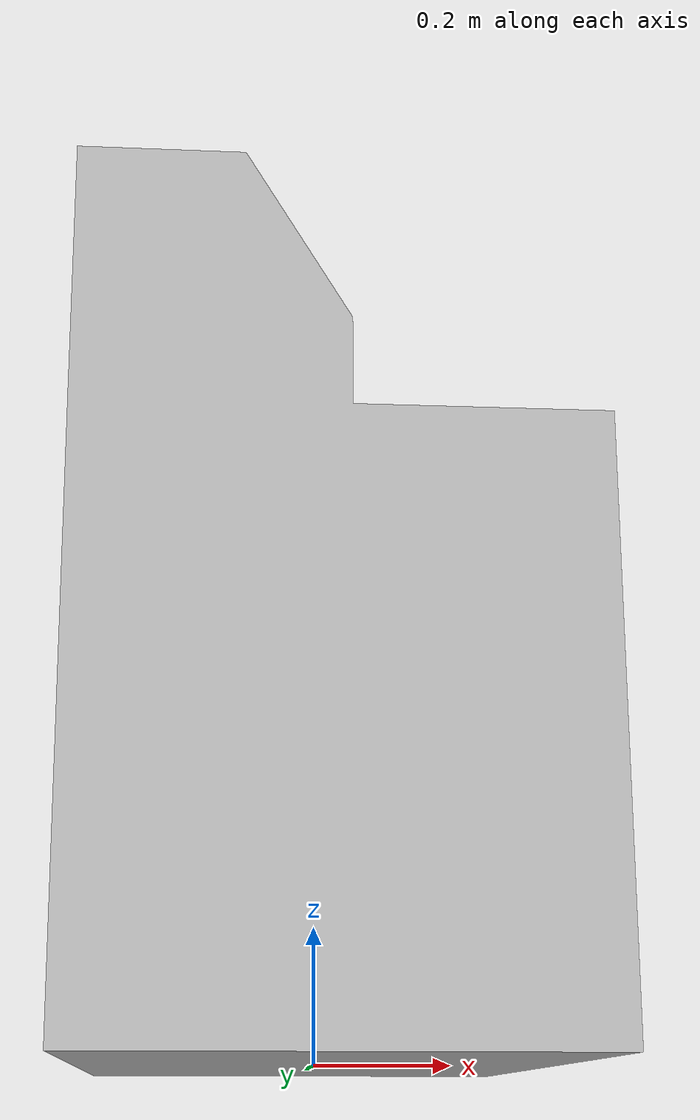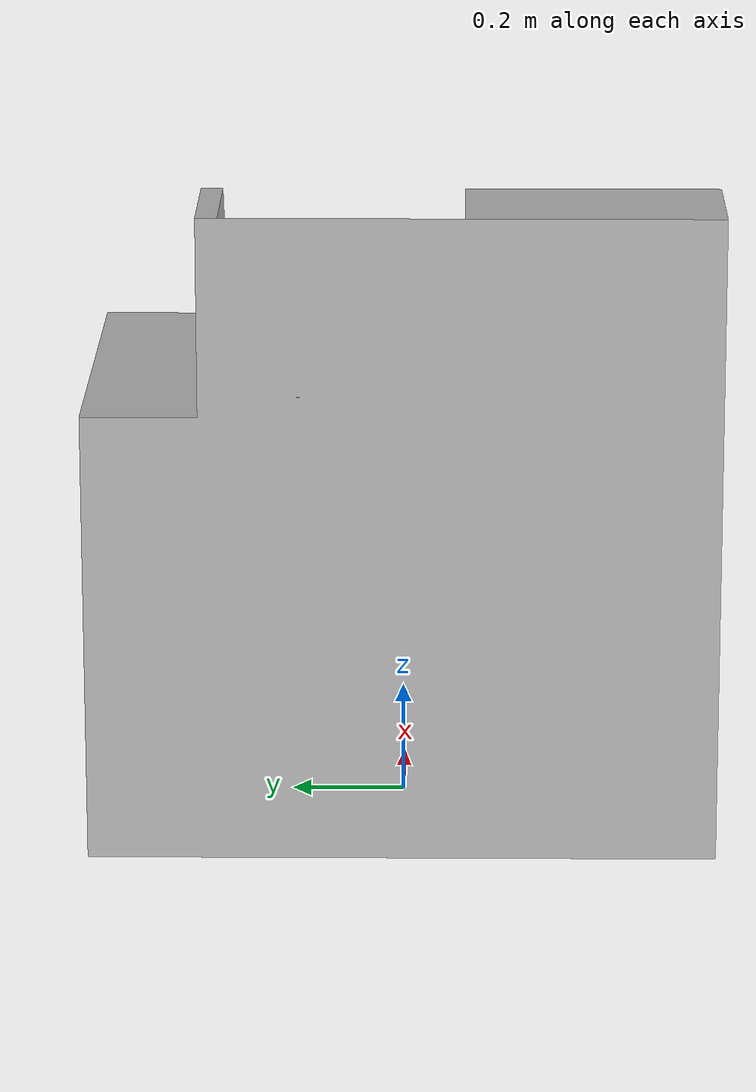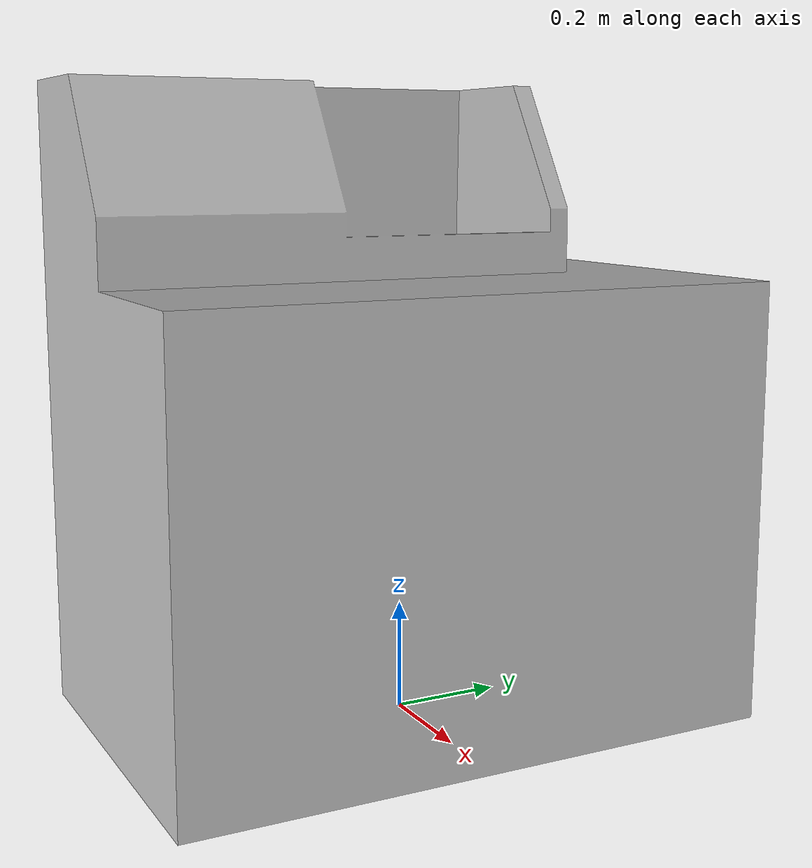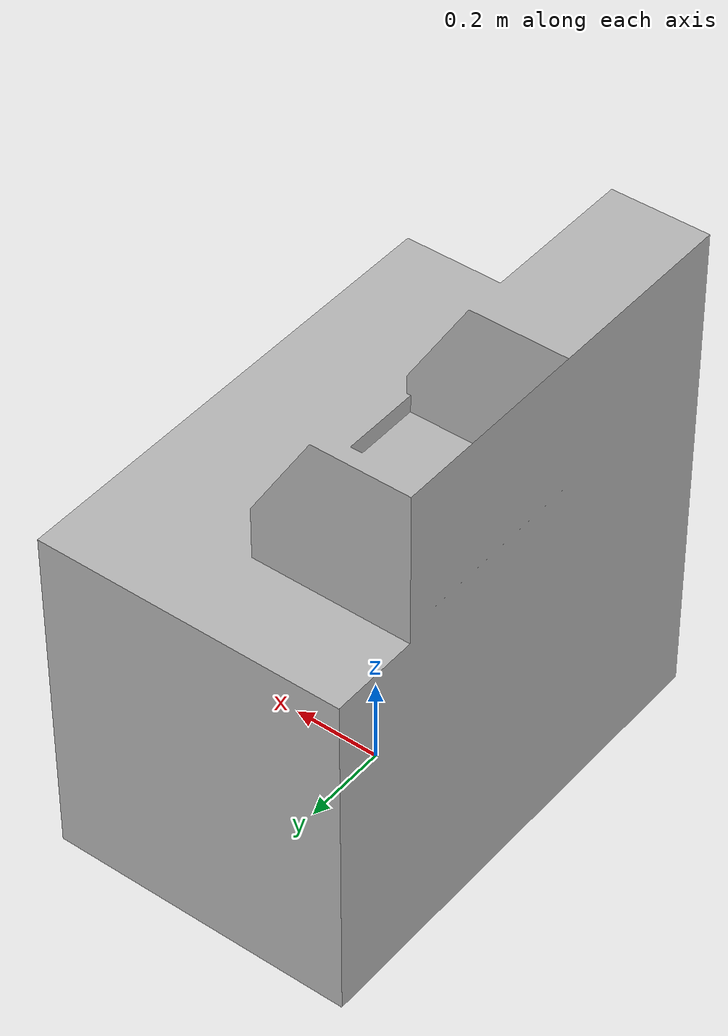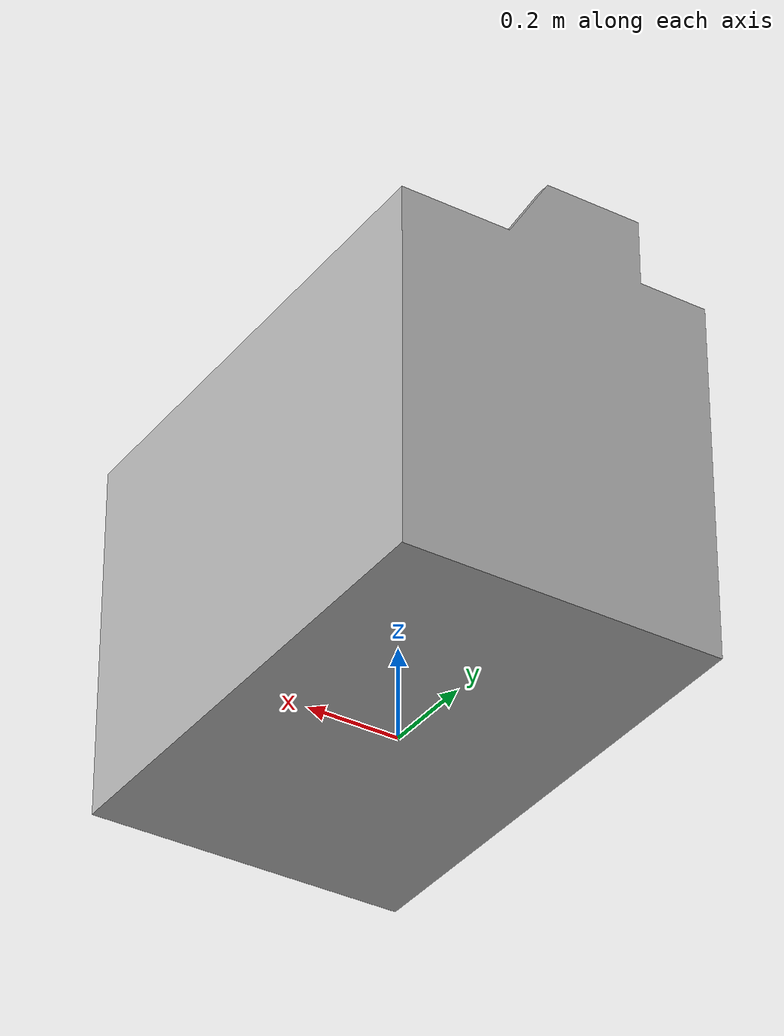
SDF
<?xml version="1.0" ?>
<sdf version='1.4'>
  <model name="shunk_machine">
      <static>1</static>
      <link name='link'>
        <inertial>
          <mass>0.0676998</mass>
          <inertia>
            <ixx>6.36046210549e-06</ixx>
            <ixy>0.000000</ixy>
            <ixz>0.000000</ixz>
            <iyy>7.70974202419e-05</iyy>
            <iyz>0.000000</iyz>
            <izz>7.84820892159e-05</izz>
          </inertia>
        </inertial>
        <collision name='collision'>
          <geometry>
            <mesh>
              <uri>model://shunk_machine/meshes/shunk_machine_nodoor_nolathe_collisions_simple.stl</uri>
              <scale>1 1 1</scale>
            </mesh>
          </geometry>
          <surface>
            <friction>
              <ode>
                <mu>30.0</mu>
                <mu2>30.0</mu2>
              </ode>
            </friction>
            <contact>
              <ode>
                <soft_cfm>0</soft_cfm>
    	          <soft_erp>0.2</soft_erp>
    	          <kp>1e+13</kp>
    	          <kd>1</kd>
    	          <max_vel>0.01</max_vel>
    	          <min_depth>0</min_depth>
              </ode>
            </contact>
          </surface>
        </collision>
        <visual name='visual'>
          <geometry>
            <mesh>
              <uri>model://shunk_machine/meshes/shunk_machine_door.dae</uri>
              <scale>1 1 1</scale>
            </mesh>
          </geometry>
        </visual>
        <velocity_decay>
          <linear>0.000000</linear>
          <angular>0.000000</angular>
        </velocity_decay>
        <self_collide>0</self_collide>
        <kinematic>0</kinematic>
        <gravity>1</gravity>
      </link>
  </model>
</sdf>
